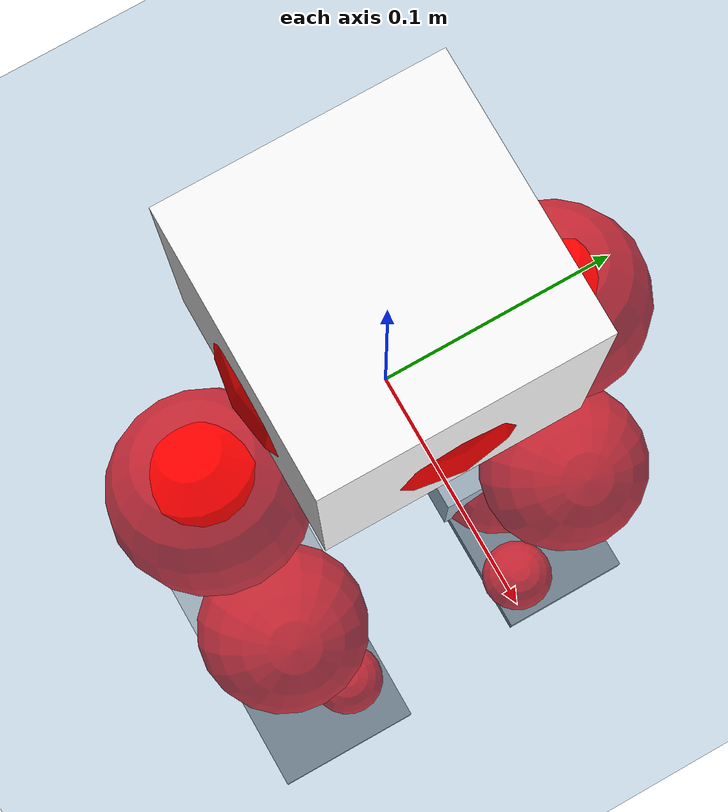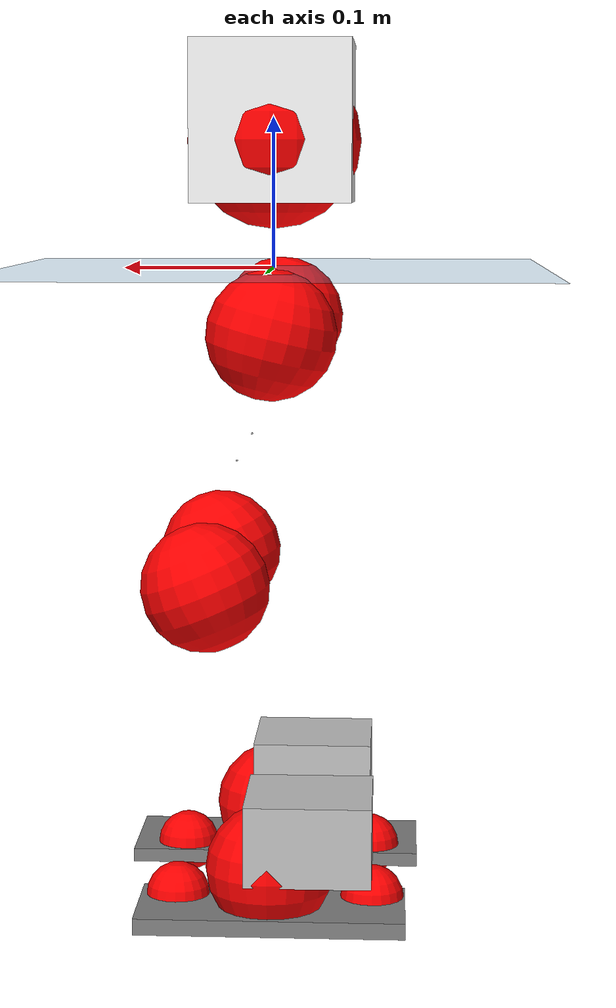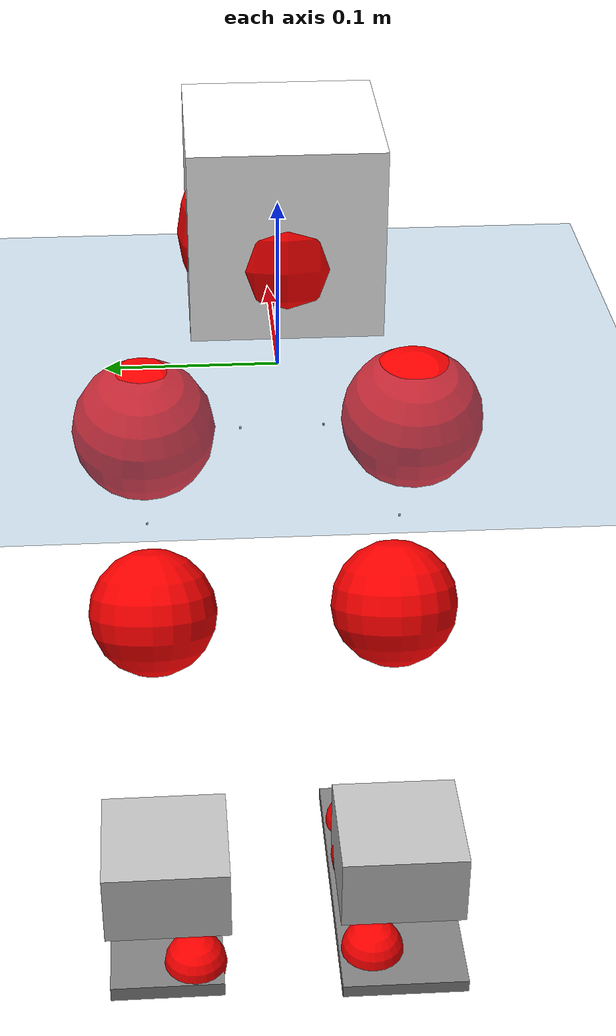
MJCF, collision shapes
<mujoco model="pi_12dof_release_v1">
  <compiler angle="radian" assetdir="assets" balanceinertia="true" inertiafromgeom="false"/>

  <option timestep="0.005" density="1.2" viscosity="2e-05"/>

  <size nkey="1"/>

  <visual>
    <quality shadowsize="8192"/>
    <map shadowclip="0.5"/>
  </visual>

  <default>
    <default class="/">
      <joint armature="0.01" damping="0.01" frictionloss="0.01"/>
      <geom contype="0" conaffinity="0" group="1" solref="-1000 -80"/>
      <site size="0.01 0.005 0.005" group="5"/>
      <general forcelimited="true" biastype="affine" gainprm="20" biasprm="0 -20 -0.5"/>
      <default class="foot">
        <geom size="0.0845 0.036 0.005" type="box" condim="6" group="4" priority="1" friction="0.9 0.2 0.2" solimp="0.015 1 0.005"/>
      </default>
      <default class="reward_collision_sphere">
        <geom group="5" rgba="1 0 0 1"/>
      </default>
    </default>
  </default>

  <asset>
    <texture type="skybox" colorspace="auto" name="//unnamed_texture_0" builtin="gradient" rgb1="0.95 0.95 0.95" rgb2="0.95 0.95 0.95" width="100" height="600"/>
    <texture type="2d" colorspace="auto" name="texplane" builtin="checker" rgb1="0.345 0.575 0.748" rgb2="0.345 0.575 0.748" markrgb="1 1 1" width="512" height="512"/>
    <material name="MatPlane" class="/" texture="texplane" texuniform="true" texrepeat="2 2" specular="0.9"/>
    <mesh name="baselink_1" class="/" file="baselink_1.STL"/>
    <mesh name="r_hip_pitch_link" class="/" file="r_hip_pitch_link.STL"/>
    <mesh name="r_hip_roll_link" class="/" file="r_hip_roll_link.STL"/>
    <mesh name="r_thigh_link" class="/" file="r_thigh_link.STL"/>
    <mesh name="r_calf_link" class="/" file="r_calf_link.STL"/>
    <mesh name="r_ankle_pitch_link" class="/" file="r_ankle_pitch_link.STL"/>
    <mesh name="r_ankle_roll_link" class="/" file="r_ankle_roll_link.STL"/>
    <mesh name="l_hip_pitch_link" class="/" file="l_hip_pitch_link.STL"/>
    <mesh name="l_hip_roll_link" class="/" file="l_hip_roll_link.STL"/>
    <mesh name="l_thigh_link" class="/" file="l_thigh_link.STL"/>
    <mesh name="l_calf_link" class="/" file="l_calf_link.STL"/>
    <mesh name="l_ankle_pitch_link" class="/" file="l_ankle_pitch_link.STL"/>
    <mesh name="l_ankle_roll_link" class="/" file="l_ankle_roll_link.STL"/>
  </asset>

  <worldbody>
    <geom name="floor" class="/" size="100 100 0.125" type="plane" group="0" material="MatPlane"/>
    <light name="toplight_shadow" class="/" pos="0 0 5" dir="0.0990148 0.0990148 -0.990148" type="directional" ambient="0.04 0.04 0.04" diffuse="0.55 0.55 0.55" specular="0.12 0.12 0.12"/>
    <light name="toplight_fill" class="/" pos="0 0 5" dir="0.0990148 0.0990148 -0.990148" type="directional" castshadow="false" ambient="0.04 0.04 0.04" diffuse="0.3 0.3 0.3" specular="0.08 0.08 0.08"/>
    <body name="trunk" pos="2.34989e-05 -0.00232646 -0.00255732" quat="1 -0.000145265 -0.000304401 -0.000736485">
      <inertial pos="0.00280176 -0.00243341 0.0508042" quat="0.703351 0.0101333 0.0149744 0.710613" mass="2.63548" diaginertia="0.00777552 0.00781942 0.0124714"/>
      <joint name="//unnamed_joint_0" type="free"/>
      <geom name="//unnamed_geom_1" class="/" type="mesh" density="0" rgba="1 1 1 1" mesh="baselink_1"/>
      <geom name="//unnamed_geom_2" class="/" size="0.052852 0.052852 0.052852" pos="0 0 0.0992463" type="box" rgba="1 1 1 1"/>
      <geom name="//unnamed_geom_3" class="reward_collision_sphere" size="0.0581372" pos="0 0 0.0868405"/>
      <site name="imu" class="/" pos="-0.00447628 0.0121392 -0.00882744" size="0.0105704"/>
      <camera name="track" class="/" pos="0 -1.94474 0" quat="0.707107 0.707107 0 0" mode="trackcom"/>
      <camera name="ego_camera" class="/" pos="0.0718626 0 0.223304" quat="-0.5 -0.5 0.5 0.5"/>
      <body name="r_hip_pitch_link" pos="-0.0023069 -0.0250596 -0.0376347" quat="0.992196 -3.2365e-05 -0.124685 -9.90471e-06">
        <inertial pos="0.00162672 -0.0570735 -0.00288847" quat="-0.0163078 0.704003 -0.0312891 0.70932" mass="0.443071" diaginertia="8.84189e-05 8.59277e-05 0.000255915"/>
        <joint name="r_hip_pitch_joint" class="/" pos="0 0 0" axis="-0.0100445 -0.999938 0.00482795" stiffness="0.00806703" range="-1.75557 1.29218" armature="0.0104335" damping="0.00780207" frictionloss="0.0117658"/>
        <geom name="//unnamed_geom_4" class="/" type="mesh" density="0" rgba="0.75294 0.75294 0.75294 1" mesh="r_hip_pitch_link"/>
        <geom name="//unnamed_geom_5" class="/" size="0.00052852 0.00052852 0.00052852" type="box" rgba="0.75294 0.75294 0.75294 1"/>
        <body name="r_hip_roll_link" pos="0.000895564 -0.052636 0.00273897" quat="1 4.86035e-06 -5.89867e-05 4.037e-06">
          <inertial pos="-0.00183169 -0.00079105 -0.0746058" quat="0.704191 -0.0827624 -0.081815 0.700408" mass="0.450572" diaginertia="0.00027241 0.00024728 0.000365985"/>
          <joint name="r_hip_roll_joint" class="/" pos="0 0 0" axis="-1 -0.000671601 0.000517316" stiffness="0.00780531" range="-0.150367 0.552914" armature="0.0101639" damping="0.000508403" frictionloss="0.0100649"/>
          <geom name="//unnamed_geom_6" class="/" type="mesh" density="0" rgba="0.75294 0.75294 0.75294 1" mesh="r_hip_roll_link"/>
          <geom name="//unnamed_geom_7" class="/" size="0.00052852 0.00052852 0.00052852" type="box" rgba="0.75294 0.75294 0.75294 1"/>
          <geom name="//unnamed_geom_8" class="reward_collision_sphere" size="0.0422816"/>
          <body name="r_thigh_link" pos="0.000473171 0.00221144 -0.0855803" quat="0.999999 -0.00114439 0.000304727 0.000343418">
            <inertial pos="0.00280253 0.00355328 -0.0609646" quat="0.734491 0.678614 0.000849101 -0.00244571" mass="0.136308" diaginertia="9.82295e-05 8.52284e-05 0.000165032"/>
            <joint name="r_thigh_joint" class="/" pos="0 0 0" axis="0.00246435 -0.00780054 -0.999967" stiffness="0.00653888" range="-0.303342 0.6472" armature="0.0099167" damping="0.01969" frictionloss="0.0110727"/>
            <geom name="//unnamed_geom_9" class="/" type="mesh" density="0" rgba="0.75294 0.75294 0.75294 1" mesh="r_thigh_link"/>
            <geom name="//unnamed_geom_10" class="/" size="0.00052852 0.00052852 0.00052852" type="box" rgba="0.75294 0.75294 0.75294 1"/>
            <body name="r_calf_link" pos="0.000734469 -0.00184497 -0.0864801" quat="0.947872 0.00122892 0.318648 -8.86775e-06">
              <inertial pos="0.0014746 0.00112176 -0.0868115" quat="0.999962 -0.00793909 1.81096e-05 0.00357278" mass="0.970093" diaginertia="0.0029177 0.00308707 0.000510831"/>
              <joint name="r_calf_joint" class="/" pos="0 0 0" axis="-0.00079919 -0.999984 0.00562001" range="-1.6327 0.625665" armature="0.0100906" damping="0.0112019" frictionloss="0.0101882"/>
              <geom name="//unnamed_geom_11" class="/" type="mesh" density="0" rgba="0.75294 0.75294 0.75294 1" mesh="r_calf_link"/>
              <geom name="//unnamed_geom_12" class="/" size="0.00052852 0.00052852 0.00052852" type="box" rgba="0.75294 0.75294 0.75294 1"/>
              <geom name="//unnamed_geom_13" class="reward_collision_sphere" size="0.0422816"/>
              <body name="r_ankle_pitch_link" pos="0.000526542 -0.000933218 -0.172767" quat="0.98006 -5.95336e-05 -0.198703 0.000110196">
                <inertial pos="0.0023375 0.00417634 -0.00217903" quat="0.00219107 0.707073 -0.00204676 0.707134" mass="0.20347" diaginertia="0.00024066 0.00018064 0.000334231"/>
                <joint name="r_ankle_pitch_joint" class="/" pos="0 0 0" axis="4.2904e-05 -0.999997 0.00255869" stiffness="0.00155709" range="-1.33037 0.538121" armature="0.0104584" damping="0.0140123" frictionloss="0.00929211"/>
                <geom name="//unnamed_geom_14" class="/" type="mesh" density="0" rgba="0.75294 0.75294 0.75294 1" mesh="r_ankle_pitch_link"/>
                <geom name="//unnamed_geom_15" class="/" size="0.0412245 0.0422816 0.026426" type="box" rgba="0.75294 0.75294 0.75294 1"/>
                <body name="r_ankle_roll_link" pos="0.0747469 0.00134439 -0.000300633" quat="1 3.69369e-05 -3.30148e-05 6.69266e-06">
                  <inertial pos="-0.0198358 -2.05891e-05 -0.0198165" quat="0.559833 0.430952 0.433996 0.55903" mass="0.637457" diaginertia="0.000945832 0.000888222 0.000837574"/>
                  <joint name="r_ankle_roll_joint" class="/" pos="0 0 0" axis="-0.999968 -0.000452253 -0.00800269" range="-0.136411 0.122601" armature="0.0108984" damping="0" frictionloss="0.0102522"/>
                  <geom name="//unnamed_geom_16" class="/" type="mesh" density="0" rgba="0.75294 0.75294 0.75294 1" mesh="r_ankle_roll_link"/>
                  <geom name="//unnamed_geom_17" class="/" type="mesh" rgba="0.75294 0.75294 0.75294 1" mesh="r_ankle_roll_link"/>
                  <geom name="right_foot" class="foot" size="0.100166 0.042105 0.00464221" pos="-0.0488666 0 -0.0545855"/>
                  <geom name="//unnamed_geom_19" class="reward_collision_sphere" size="0.0422816" pos="-0.0479084 0 -0.0248116"/>
                  <geom name="//unnamed_geom_20" class="reward_collision_sphere" size="0.0211408" pos="0.0143725 0.0194474 -0.0496231"/>
                  <geom name="//unnamed_geom_21" class="reward_collision_sphere" size="0.0211408" pos="-0.11498 0.0194474 -0.0496231"/>
                  <site name="right_foot" class="foot" pos="-0.0488666 0 -0.0545855" size="0.0105704"/>
                </body>
              </body>
            </body>
          </body>
        </body>
      </body>
      <body name="l_hip_pitch_link" pos="-0.00161685 0.0244034 -0.0385658" quat="0.992209 -0.000550935 -0.124585 0.000609304">
        <inertial pos="0.000775188 0.050833 -0.000989237" quat="-0.0384185 0.705372 0.0302599 0.707148" mass="0.461596" diaginertia="0.000102508 9.26599e-05 0.000286411"/>
        <joint name="l_hip_pitch_joint" class="/" pos="0 0 0" axis="0.00563933 0.999984 -0.000605008" range="-1.19267 1.73127" armature="0.0116028" damping="0.000288598" frictionloss="0.0119807"/>
        <geom name="//unnamed_geom_22" class="/" type="mesh" density="0" rgba="0.75294 0.75294 0.75294 1" mesh="l_hip_pitch_link"/>
        <geom name="//unnamed_geom_23" class="/" size="0.00052852 0.00052852 0.00052852" type="box" rgba="0.75294 0.75294 0.75294 1"/>
        <body name="l_hip_roll_link" pos="-0.000624772 0.0571781 0.00180112" quat="1 5.0379e-05 -0.000157909 -5.92494e-05">
          <inertial pos="-0.00159899 -3.25458e-07 -0.0768578" quat="0.700621 -0.0709175 -0.0802414 0.705452" mass="0.449826" diaginertia="0.000274758 0.000235244 0.000387296"/>
          <joint name="l_hip_roll_joint" class="/" pos="0 0 0" axis="-0.999927 -0.00927703 0.00768728" range="-0.541989 0.0642055" armature="0.0116203" damping="0.0134564" frictionloss="0.0120463"/>
          <geom name="//unnamed_geom_24" class="/" type="mesh" density="0" rgba="0.75294 0.75294 0.75294 1" mesh="l_hip_roll_link"/>
          <geom name="//unnamed_geom_25" class="/" size="0.00052852 0.00052852 0.00052852" type="box" rgba="0.75294 0.75294 0.75294 1"/>
          <geom name="//unnamed_geom_26" class="reward_collision_sphere" size="0.0422816"/>
          <body name="l_thigh_link" pos="0.001226 0.00100077 -0.0834608" quat="1 -0.000487491 6.5509e-05 0.000237205">
            <inertial pos="0.000586486 -0.00138281 -0.0561976" quat="0.675806 0.737077 -0.0020104 0.000300654" mass="0.1342" diaginertia="0.000100538 8.12875e-05 0.000172219"/>
            <joint name="l_thigh_joint" class="/" pos="0 0 0" axis="-0.00429339 0.000988029 -0.99999" range="-0.596905 0.294963" armature="0.008955" damping="0.00917878" frictionloss="0.010556"/>
            <geom name="//unnamed_geom_27" class="/" type="mesh" density="0" rgba="0.75294 0.75294 0.75294 1" mesh="l_thigh_link"/>
            <geom name="//unnamed_geom_28" class="/" size="0.00052852 0.00052852 0.00052852" type="box" rgba="0.75294 0.75294 0.75294 1"/>
            <body name="l_calf_link" pos="-0.000291478 -0.000756597 -0.0858647" quat="0.947933 -0.00043483 0.31847 0.000561867">
              <inertial pos="0.000455479 0.00527038 -0.0867653" quat="0.999996 0.000615398 0.000714899 0.00265329" mass="0.965948" diaginertia="0.00296692 0.00316883 0.000500673"/>
              <joint name="l_calf_joint" class="/" pos="0 0 0" axis="-8.13749e-06 1 2.03148e-05" range="-0.662893 1.65427" armature="0.0107889" damping="0.0129354" frictionloss="0.0104834"/>
              <geom name="//unnamed_geom_29" class="/" type="mesh" density="0" rgba="0.75294 0.75294 0.75294 1" mesh="l_calf_link"/>
              <geom name="//unnamed_geom_30" class="/" size="0.00052852 0.00052852 0.00052852" type="box" rgba="0.75294 0.75294 0.75294 1"/>
              <geom name="//unnamed_geom_31" class="reward_collision_sphere" size="0.0422816"/>
              <body name="l_ankle_pitch_link" pos="-5.05402e-05 -0.00137149 -0.175469" quat="0.980331 -5.72623e-05 -0.197362 0.000409262">
                <inertial pos="0.00465466 -0.00365874 -0.000893135" quat="-0.00246693 0.706597 0.00112784 0.707611" mass="0.194357" diaginertia="0.000232821 0.000186609 0.000338272"/>
                <joint name="l_ankle_pitch_joint" class="/" pos="0 0 0" axis="-0.00297464 0.999995 0.000771238" range="-0.524755 1.29748" armature="0.0103726" damping="0.0151693" frictionloss="0.0119856"/>
                <geom name="//unnamed_geom_32" class="/" type="mesh" density="0" rgba="0.75294 0.75294 0.75294 1" mesh="l_ankle_pitch_link"/>
                <geom name="//unnamed_geom_33" class="/" size="0.0412245 0.0422816 0.026426" type="box" rgba="0.75294 0.75294 0.75294 1"/>
                <body name="l_ankle_roll_link" pos="0.073724 0.00156401 0.00035596" quat="1 0.000295289 -0.000304262 -0.000227241">
                  <inertial pos="-0.0238522 0.0011554 -0.0151558" quat="0.550667 0.438655 0.433216 0.562735" mass="0.609592" diaginertia="0.000949031 0.000875057 0.000861199"/>
                  <joint name="l_ankle_roll_joint" class="/" pos="0 0 0" axis="-0.999963 -0.00840617 0.00202414" range="-0.191462 0.14765" armature="0.0100691" damping="0.0238069" frictionloss="0.0113884"/>
                  <geom name="//unnamed_geom_34" class="/" type="mesh" density="0" rgba="0.75294 0.75294 0.75294 1" mesh="l_ankle_roll_link"/>
                  <geom name="//unnamed_geom_35" class="/" type="mesh" rgba="0.75294 0.75294 0.75294 1" mesh="l_ankle_roll_link"/>
                  <geom name="left_foot" class="foot" size="0.0879931 0.0379223 0.00536341" pos="-0.0488666 0 -0.0545855"/>
                  <geom name="//unnamed_geom_37" class="reward_collision_sphere" size="0.0422816" pos="-0.0479084 0 -0.0248116"/>
                  <geom name="//unnamed_geom_38" class="reward_collision_sphere" size="0.0211408" pos="0.0143725 -0.0194474 -0.0496231"/>
                  <geom name="//unnamed_geom_39" class="reward_collision_sphere" size="0.0211408" pos="-0.11498 -0.0194474 -0.0496231"/>
                  <site name="left_foot" class="foot" pos="-0.0488666 0 -0.0545855" size="0.0105704"/>
                </body>
              </body>
            </body>
          </body>
        </body>
      </body>
    </body>
  </worldbody>

  <contact>
    <pair class="/" geom1="floor" geom2="right_foot" name="//unnamed_contact_1"/>
    <pair class="/" geom1="floor" geom2="left_foot" name="//unnamed_contact_0"/>
  </contact>

  <actuator>
    <general name="r_hip_pitch_joint" class="/" joint="r_hip_pitch_joint" forcerange="-21.343 21.343" gainprm="21.2898" biasprm="0 -21.2898 -0.490205"/>
    <general name="r_hip_roll_joint" class="/" joint="r_hip_roll_joint" forcerange="-21.9837 21.9837" gainprm="21.2898" biasprm="0 -21.2898 -0.490205"/>
    <general name="r_thigh_joint" class="/" joint="r_thigh_joint" forcerange="-21.914 21.914" gainprm="21.2898" biasprm="0 -21.2898 -0.490205"/>
    <general name="r_calf_joint" class="/" joint="r_calf_joint" forcerange="-21.6296 21.6296" gainprm="21.2898" biasprm="0 -21.2898 -0.490205"/>
    <general name="r_ankle_pitch_joint" class="/" joint="r_ankle_pitch_joint" forcerange="-22.931 22.931" gainprm="21.2898" biasprm="0 -21.2898 -0.490205"/>
    <general name="r_ankle_roll_joint" class="/" joint="r_ankle_roll_joint" forcerange="-21.5129 21.5129" gainprm="21.2898" biasprm="0 -21.2898 -0.490205"/>
    <general name="l_hip_pitch_joint" class="/" joint="l_hip_pitch_joint" forcerange="-22.956 22.956" gainprm="21.2898" biasprm="0 -21.2898 -0.490205"/>
    <general name="l_hip_roll_joint" class="/" joint="l_hip_roll_joint" forcerange="-19.9091 19.9091" gainprm="21.2898" biasprm="0 -21.2898 -0.490205"/>
    <general name="l_thigh_joint" class="/" joint="l_thigh_joint" forcerange="-22.1665 22.1665" gainprm="21.2898" biasprm="0 -21.2898 -0.490205"/>
    <general name="l_calf_joint" class="/" joint="l_calf_joint" forcerange="-21.5404 21.5404" gainprm="21.2898" biasprm="0 -21.2898 -0.490205"/>
    <general name="l_ankle_pitch_joint" class="/" joint="l_ankle_pitch_joint" forcerange="-22.1386 22.1386" gainprm="21.2898" biasprm="0 -21.2898 -0.490205"/>
    <general name="l_ankle_roll_joint" class="/" joint="l_ankle_roll_joint" forcerange="-20.4799 20.4799" gainprm="21.2898" biasprm="0 -21.2898 -0.490205"/>
  </actuator>

  <sensor>
    <gyro site="imu" name="imu_angular_velocity"/>
    <velocimeter site="imu" name="imu_linear_velocity"/>
    <framelinvel objtype="site" objname="left_foot" name="left_foot_global_linear_velocity"/>
    <framelinvel objtype="site" objname="right_foot" name="right_foot_global_linear_velocity"/>
  </sensor>

  <keyframe>
    <key name="home" qpos="0 0 0.291 1 0 0 0 0.4 0 0 -0.8 0.4 0 -0.4 0 0 0.8 -0.4 0"/>
  </keyframe>
</mujoco>
